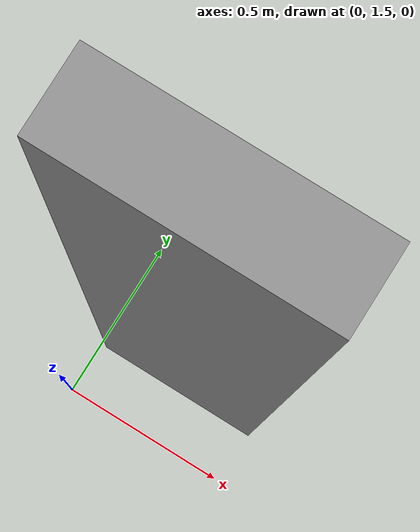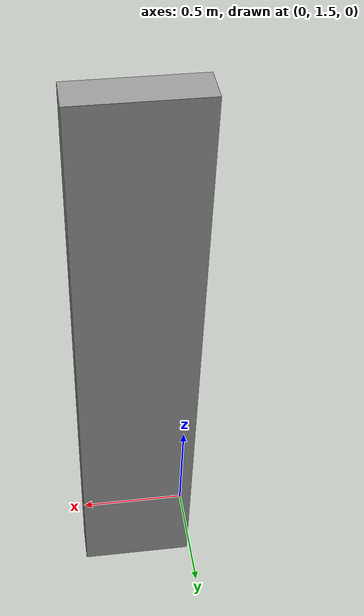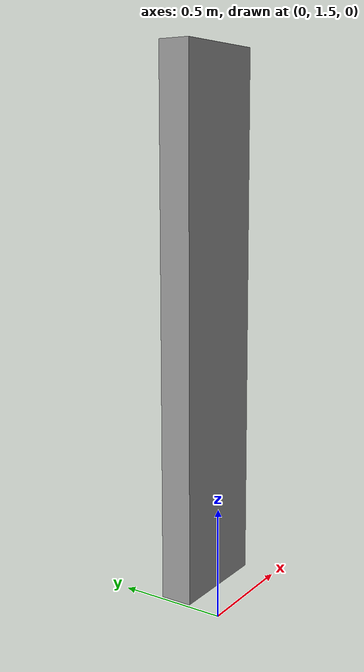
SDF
<?xml version='1.0'?>
<sdf version='1.7'>
  <model name='1wall'>
    <pose>0.258699 0.906338 0 0 -0 0</pose>
    <link name='Wall_36'>
      <collision name='Wall_36_Collision'>
        <geometry>
          <box>
            <size>0.5 0.15 2.5</size>
          </box>
        </geometry>
        <pose>0 0 1.25 0 -0 0</pose>
      </collision>
      <visual name='Wall_36_Visual'>
        <pose>0 0 1.25 0 -0 0</pose>
        <geometry>
          <box>
            <size>0.5 0.15 2.5</size>
          </box>
        </geometry>
        <material>
          <script>
            <uri>file://media/materials/scripts/gazebo.material</uri>
            <name>Gazebo/Grey</name>
          </script>
          <ambient>1 1 1 1</ambient>
        </material>
        <meta>
          <layer>0</layer>
        </meta>
      </visual>
      <pose>0.008699 0.831338 0 0 -0 0</pose>
    </link>
    <static>1</static>
  </model>
</sdf>
